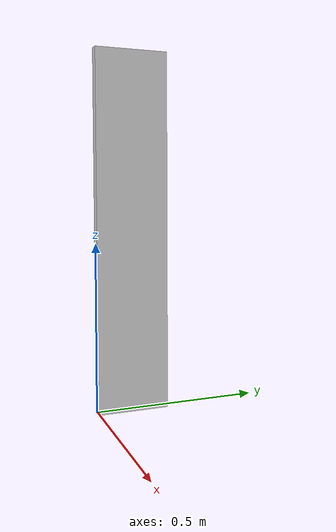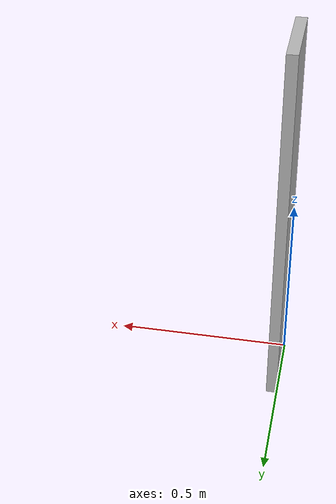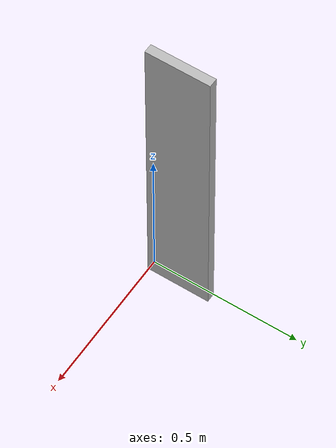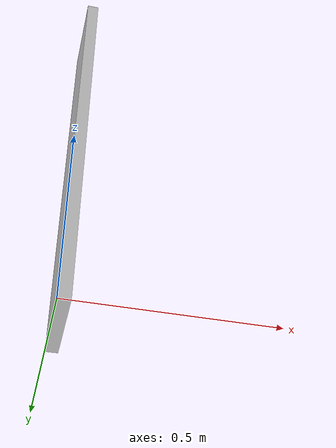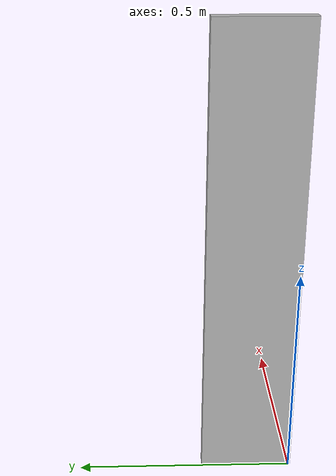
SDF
<?xml version='1.0'?>
<sdf version='1.4'>
    <model name="lattice">
        <static>true</static>
	    <link name="link">
		<collision name="collision">
		  <pose>0.02 0.105 0.525 0 0 0</pose>
		  <geometry>
		    <box>
		      <size>0.04 0.21 1.05</size>
		    </box>
		  </geometry>
		</collision>
		<visual name='visual'>
		    <geometry>
			<mesh>
			    <uri>model://lattice/meshes/lattice.dae</uri>
			</mesh>
		    </geometry>
		</visual>
	    </link>
    </model>
</sdf>
